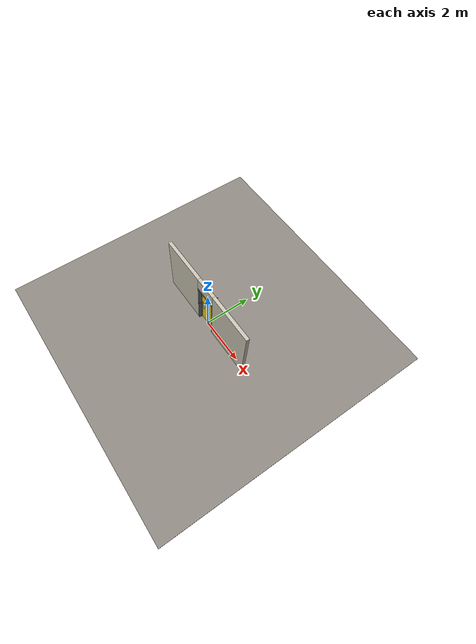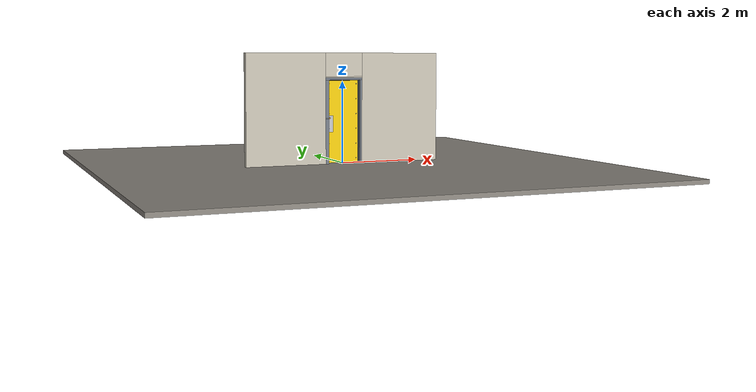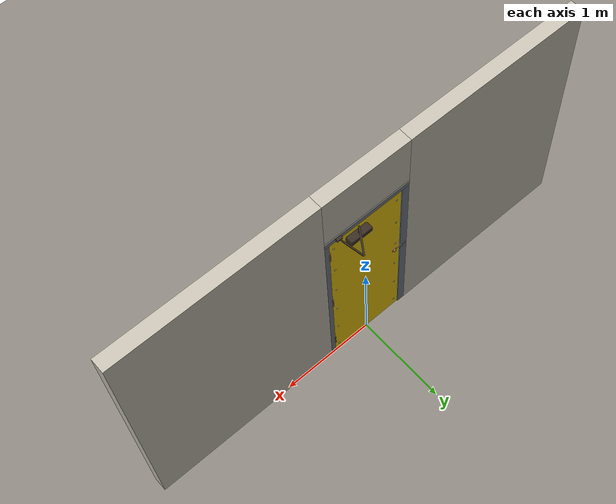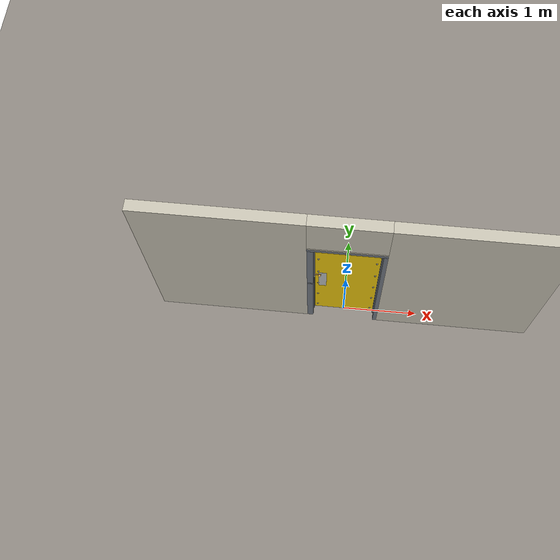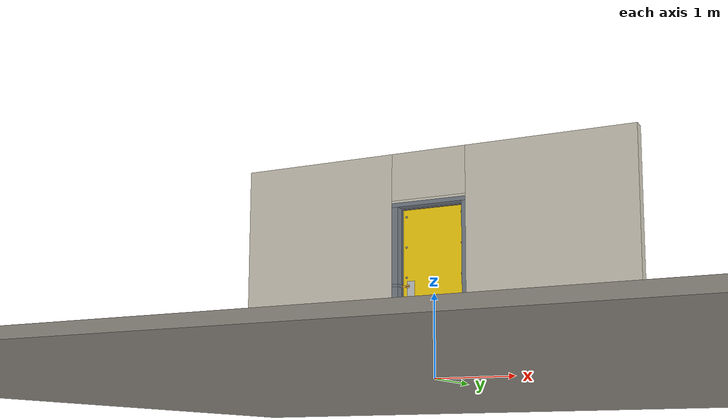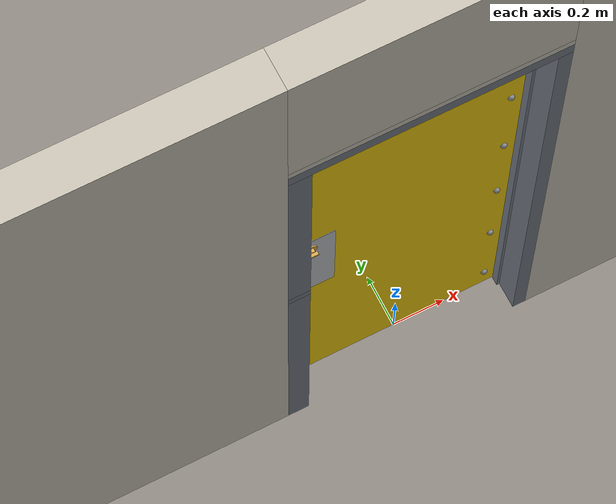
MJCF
<?xml version="1.0" ?>
<mujoco model="db0418_swing_single_full">
  <compiler angle="radian" meshdir="../../hardware" texturedir="../../textures" autolimits="true" inertiafromgeom="false"/>
  <option timestep="0.002" integrator="implicitfast" cone="elliptic" impratio="10" noslip_iterations="3">
    <flag multiccd="enable"/>
  </option>
  <size memory="16M"/>
  <default>
    <geom condim="4" solref="0.005 1" solimp="0.95 0.99 0.001"/>
    <joint solreflimit="0.005 1" solimplimit="0.95 0.99 0.001"/>
    <tendon solreflimit="0.005 1"/>
    <equality solref="0.002 1"/>
  </default>
  <visual>
    <headlight ambient="0.4 0.4 0.4" diffuse="0.7 0.7 0.7" specular="0.2 0.2 0.2"/>
    <quality shadowsize="4096"/>
    <map znear="0.01" zfar="60"/>
  </visual>
  <asset>
    <mesh name="closer_body_b226fdb10b" file="closer_body_b226fdb10b.obj"/>
    <mesh name="cyl_face_e9e5036966" file="cyl_face_e9e5036966.obj"/>
    <mesh name="hinge_6a70328eaf" file="hinge_6a70328eaf.obj"/>
    <mesh name="hinge_jamb_2905960ffb" file="hinge_jamb_2905960ffb.obj"/>
    <mesh name="thumbturn_eb5c9899a3" file="thumbturn_eb5c9899a3.obj"/>
    <material name="mat_floor" rgba="0.55 0.53 0.5 1" specular="0.2" shininess="0.15" reflectance="0"/>
    <material name="mat_wall" rgba="0.78 0.76 0.7 1" specular="0.2" shininess="0.1" reflectance="0"/>
    <material name="mat_leaf" rgba="0.95 0.8 0.05 1" specular="0.23" shininess="0.32" reflectance="0.02"/>
    <material name="mat_rivet" rgba="0.55 0.56 0.58 1" specular="0.8" shininess="0.55" reflectance="0.4"/>
    <material name="mat_hinge" rgba="0.45 0.3 0.22 1" specular="0.5" shininess="0.1" reflectance="0.2"/>
    <material name="mat_op_stainless" rgba="0.75 0.76 0.77 1" specular="0.8" shininess="0.65" reflectance="0.4"/>
    <material name="mat_deadbolt" rgba="0.85 0.66 0.3 1" specular="0.8" shininess="0.75" reflectance="0.4"/>
    <material name="mat_frame" rgba="0.45 0.48 0.52 1" specular="0.32" shininess="0.6" reflectance="0.08"/>
    <material name="mat_seal" rgba="0.1 0.1 0.1 1" specular="0.2" shininess="0.1" reflectance="0"/>
    <material name="mat_closer" rgba="0.22 0.17 0.13 1" specular="0.8" shininess="0.6" reflectance="0.4"/>
    <texture name="skybox" type="skybox" builtin="gradient" rgb1="0.6 0.7 0.85" rgb2="0.9 0.92 0.95" width="256" height="256"/>
  </asset>
  <worldbody>
    <light name="sun" pos="1.5 -2.5 4" dir="-0.3 0.5 -0.8" directional="true" diffuse="0.8 0.8 0.8" specular="0.3 0.3 0.3" castshadow="true"/>
    <light name="fill" pos="-1.5 2.5 3" dir="0.3 -0.5 -0.7" directional="true" diffuse="0.35 0.35 0.4" castshadow="false"/>
    <camera name="robot_view" pos="0 -2.604687 1.734312" xyaxes="1 0 0 0 0.26963 0.962964" fovy="52"/>
    <camera name="far_view" pos="0 2.479687 1.734312" xyaxes="-1 0 0 0 -0.26963 0.962964" fovy="52"/>
    <camera name="iso" pos="-1.932062 -2.197938 2.141063" xyaxes="0.741536 -0.670913 0 0.242917 0.268487 0.932151" fovy="46"/>
    <camera name="detail_handle" pos="-0.1235 -0.8625 1.245" xyaxes="0.97561 0.219512 0 -0.070934 0.315262 0.94635" fovy="38"/>
    <geom name="floor" type="box" size="6 6 0.05" pos="0 0 -0.05" material="mat_floor" group="0" contype="1" conaffinity="1" friction="0.8 0.005 0.0001" density="2400"/>
    <geom name="wall_left" type="box" size="1.00525 0.0725 1.35" pos="-1.49475 -0.0625 1.35" material="mat_wall" group="0" contype="1" conaffinity="1" friction="0.6 0.005 0.0001" density="800"/>
    <geom name="wall_right" type="box" size="1.02025 0.0725 1.35" pos="1.47975 -0.0625 1.35" material="mat_wall" group="0" contype="1" conaffinity="1" friction="0.6 0.005 0.0001" density="800"/>
    <geom name="wall_header" type="box" size="0.4745 0.0725 0.2875" pos="-0.015 -0.0625 2.4125" material="mat_wall" group="0" contype="1" conaffinity="1" friction="0.6 0.005 0.0001" density="800"/>
    <geom name="hinge_0_jamb" type="mesh" mesh="hinge_jamb_2905960ffb" pos="0.4065 0.01 0.259" quat="0 0 0 1" material="mat_hinge" group="1" contype="0" conaffinity="0" density="7850"/>
    <geom name="hinge_1_jamb" type="mesh" mesh="hinge_jamb_2905960ffb" pos="0.4065 0.01 1.025" quat="0 0 0 1" material="mat_hinge" group="1" contype="0" conaffinity="0" density="7850"/>
    <geom name="hinge_2_jamb" type="mesh" mesh="hinge_jamb_2905960ffb" pos="0.4065 0.01 1.861" quat="0 0 0 1" material="mat_hinge" group="1" contype="0" conaffinity="0" density="7850"/>
    <geom name="leaf_deadbolt_strike_b" type="box" size="0.0155 0.003 0.0005" pos="-0.409 0 1.0865" quat="0.5 0.5 0.5 0.5" material="mat_deadbolt" group="1" contype="0" conaffinity="0" density="7800"/>
    <geom name="leaf_deadbolt_strike_l" type="box" size="0.003 0.0155 0.0005" pos="-0.409 -0.0125 1.105" quat="0.5 0.5 0.5 0.5" material="mat_deadbolt" group="1" contype="0" conaffinity="0" density="7800"/>
    <geom name="leaf_deadbolt_strike_t" type="box" size="0.0155 0.003 0.0005" pos="-0.409 0 1.1235" quat="0.5 0.5 0.5 0.5" material="mat_deadbolt" group="1" contype="0" conaffinity="0" density="7800"/>
    <geom name="leaf_deadbolt_strike_r" type="box" size="0.003 0.0155 0.0005" pos="-0.409 0.0125 1.105" quat="0.5 0.5 0.5 0.5" material="mat_deadbolt" group="1" contype="0" conaffinity="0" density="7800"/>
    <geom name="jamb_hinge" type="box" size="0.025 0.0725 1.0225" pos="0.4345 -0.0625 1.0225" material="mat_frame" group="0" contype="1" conaffinity="1" friction="0.6 0.005 0.0001" density="300"/>
    <geom name="strike_1105_wall_n" type="box" size="0.04 0.06275 0.0155" pos="-0.4495 -0.07225 1.105" material="mat_frame" group="0" contype="1" conaffinity="1" friction="0.6 0.005 0.0001" density="300"/>
    <geom name="strike_1105_wall_p" type="box" size="0.0157 0.003 0.0155" pos="-0.4252 0.0125 1.105" material="mat_frame" group="0" contype="1" conaffinity="1" friction="0.6 0.005 0.0001" density="300"/>
    <geom name="strike_1105_back" type="box" size="0.0253 0.0095 0.0155" pos="-0.4642 0 1.105" material="mat_frame" group="0" contype="1" conaffinity="1" friction="0.6 0.005 0.0001" density="300"/>
    <geom name="jamb_strike_0" type="box" size="0.04 0.0725 0.54475" pos="-0.4495 -0.0625 0.54475" material="mat_frame" group="0" contype="1" conaffinity="1" friction="0.6 0.005 0.0001" density="300"/>
    <geom name="jamb_strike_1" type="box" size="0.04 0.0725 0.46225" pos="-0.4495 -0.0625 1.58275" material="mat_frame" group="0" contype="1" conaffinity="1" friction="0.6 0.005 0.0001" density="300"/>
    <geom name="jamb_head" type="box" size="0.4745 0.0725 0.025" pos="-0.015 -0.0625 2.07" material="mat_frame" group="0" contype="1" conaffinity="1" friction="0.6 0.005 0.0001" density="300"/>
    <geom name="head_stud" type="box" size="0.4745 0.0725 0.015" pos="-0.015 -0.0625 2.11" material="mat_wall" group="0" contype="1" conaffinity="1" friction="0.6 0.005 0.0001" density="500"/>
    <geom name="stop_hinge" type="box" size="0.0055 0.016 1.0225" pos="0.404 -0.0195 1.0225" material="mat_frame" group="0" contype="1" conaffinity="1" friction="0.6 0.005 0.0001" density="300"/>
    <geom name="stop_strike" type="box" size="0.0055 0.016 0.53875" pos="-0.404 -0.0195 0.53875" material="mat_frame" group="0" contype="1" conaffinity="1" friction="0.6 0.005 0.0001" density="300"/>
    <geom name="stop_strike_1" type="box" size="0.0055 0.016 0.45625" pos="-0.404 -0.0195 1.58875" material="mat_frame" group="0" contype="1" conaffinity="1" friction="0.6 0.005 0.0001" density="300"/>
    <geom name="stop_head" type="box" size="0.4095 0.016 0.0055" pos="0 -0.0195 2.0395" material="mat_frame" group="0" contype="1" conaffinity="1" friction="0.6 0.005 0.0001" density="300"/>
    <geom name="seal_hinge" type="box" size="0.004 0.004 1.0225" pos="0.4065 -0.007 1.0225" material="mat_seal" group="1" contype="0" conaffinity="0" density="1100"/>
    <geom name="seal_strike" type="box" size="0.004 0.004 0.53875" pos="-0.4065 -0.007 0.53875" material="mat_seal" group="1" contype="0" conaffinity="0" density="1100"/>
    <geom name="seal_strike_1" type="box" size="0.004 0.004 0.45625" pos="-0.4065 -0.007 1.58875" material="mat_seal" group="1" contype="0" conaffinity="0" density="1100"/>
    <geom name="seal_head" type="box" size="0.3895 0.004 0.008" pos="0 -0.007 2.033" material="mat_seal" group="1" contype="0" conaffinity="0" density="1100"/>
    <geom name="closer_bracket" type="box" size="0.03 0.012 0.014" pos="0.3095 0.022 2.075" material="mat_closer" group="1" contype="0" conaffinity="0" density="2700"/>
    <site name="approach_point" pos="0 -1.5 0" quat="1 0 0 0" size="0.05" rgba="0.2 0.9 0.2 0.5" group="4"/>
    <site name="goal_point" pos="0 1.5 0" quat="1 0 0 0" size="0.05" rgba="0.2 0.9 0.2 0.5" group="4"/>
    <site name="door_plane_center" pos="0 0 1.0225" quat="1 0 0 0" size="0.02" rgba="0.2 0.9 0.2 0.5" group="4"/>
    <body name="leaf" pos="0.4095 0 0">
      <inertial pos="-0.399524 0.003977 1.110305" mass="81.375156" quat="0.505918 -0.507051 -0.49718 -0.489651" diaginertia="4.297059865 31.192636417 35.461095373"/>
      <joint name="leaf_hinge" type="hinge" axis="0 0 -1" pos="-0.003 0.01 0" limited="true" range="0 1.745329" solreflimit="0.02 1" damping="10.160326" frictionloss="17.356531" stiffness="19.0031" springref="-2.141756" armature="0.02"/>
      <geom name="leaf_slab" type="box" size="0.4065 0.003 1.016" pos="-0.4095 0 1.025" material="mat_leaf" group="0" contype="1" conaffinity="1" friction="0.45 0.005 0.0001" density="1"/>
      <geom name="leaf_rivet_0_0" type="sphere" size="0.012" pos="-0.053 -0.003 0.109" material="mat_rivet" group="2" contype="0" conaffinity="0" density="7850"/>
      <geom name="leaf_rivet_0_1" type="sphere" size="0.012" pos="-0.766 -0.003 0.109" material="mat_rivet" group="2" contype="0" conaffinity="0" density="7850"/>
      <geom name="leaf_rivet_1_0" type="sphere" size="0.012" pos="-0.053 -0.003 0.4754" material="mat_rivet" group="2" contype="0" conaffinity="0" density="7850"/>
      <geom name="leaf_rivet_1_1" type="sphere" size="0.012" pos="-0.766 -0.003 0.4754" material="mat_rivet" group="2" contype="0" conaffinity="0" density="7850"/>
      <geom name="leaf_rivet_2_0" type="sphere" size="0.012" pos="-0.053 -0.003 0.8418" material="mat_rivet" group="2" contype="0" conaffinity="0" density="7850"/>
      <geom name="leaf_rivet_2_1" type="sphere" size="0.012" pos="-0.766 -0.003 0.8418" material="mat_rivet" group="2" contype="0" conaffinity="0" density="7850"/>
      <geom name="leaf_rivet_3_0" type="sphere" size="0.012" pos="-0.053 -0.003 1.2082" material="mat_rivet" group="2" contype="0" conaffinity="0" density="7850"/>
      <geom name="leaf_rivet_3_1" type="sphere" size="0.012" pos="-0.766 -0.003 1.2082" material="mat_rivet" group="2" contype="0" conaffinity="0" density="7850"/>
      <geom name="leaf_rivet_4_0" type="sphere" size="0.012" pos="-0.053 -0.003 1.5746" material="mat_rivet" group="2" contype="0" conaffinity="0" density="7850"/>
      <geom name="leaf_rivet_4_1" type="sphere" size="0.012" pos="-0.766 -0.003 1.5746" material="mat_rivet" group="2" contype="0" conaffinity="0" density="7850"/>
      <geom name="leaf_rivet_5_0" type="sphere" size="0.012" pos="-0.053 -0.003 1.941" material="mat_rivet" group="2" contype="0" conaffinity="0" density="7850"/>
      <geom name="leaf_rivet_5_1" type="sphere" size="0.012" pos="-0.766 -0.003 1.941" material="mat_rivet" group="2" contype="0" conaffinity="0" density="7850"/>
      <geom name="hinge_0" type="mesh" mesh="hinge_6a70328eaf" pos="-0.003 0.01 0.259" quat="0 0 0 1" material="mat_hinge" group="1" contype="0" conaffinity="0" density="7850"/>
      <geom name="hinge_1" type="mesh" mesh="hinge_6a70328eaf" pos="-0.003 0.01 1.025" quat="0 0 0 1" material="mat_hinge" group="1" contype="0" conaffinity="0" density="7850"/>
      <geom name="hinge_2" type="mesh" mesh="hinge_6a70328eaf" pos="-0.003 0.01 1.861" quat="0 0 0 1" material="mat_hinge" group="1" contype="0" conaffinity="0" density="7850"/>
      <geom name="leaf_push_plate_n" type="box" size="0.05 0.0008 0.2" pos="-0.711 -0.0038 0.965" material="mat_op_stainless" group="1" contype="0" conaffinity="0" density="7900"/>
      <geom name="leaf_deadbolt_faceplate" type="box" size="0.0006 0.001 0.0245" pos="-0.8154 0 1.105" material="mat_deadbolt" group="1" contype="0" conaffinity="0" density="8500"/>
      <geom name="leaf_deadbolt_cylinder_face" type="mesh" mesh="cyl_face_e9e5036966" pos="-0.751 0.003 1.105" quat="0 0 0.707107 0.707107" material="mat_deadbolt" group="1" contype="0" conaffinity="0" density="7100"/>
      <geom name="closer_body" type="mesh" mesh="closer_body_b226fdb10b" pos="-0.3 0.003 1.952" quat="0 0 0.707107 0.707107" material="mat_closer" group="1" contype="0" conaffinity="0" density="2000"/>
      <geom name="closer_body_col" type="box" size="0.12 0.04 0.03" pos="-0.3 0.043 1.952" material="mat_closer" group="3" contype="1" conaffinity="1" rgba="0.8 0.3 0.3 0.25" friction="0.6 0.005 0.0001" density="2000"/>
      <geom name="closer_pinion_shaft" type="cylinder" size="0.008 0.0615" pos="-0.3 0.045 2.0135" material="mat_closer" group="1" contype="0" conaffinity="0" density="2700"/>
      <site name="leaf_push_plate_push_n" pos="-0.711 -0.003 0.965" quat="1 0 0 0" size="0.012" rgba="0.2 0.9 0.2 0.5" group="4"/>
      <site name="leaf_edge_mid" pos="-0.816 0 1.016" quat="1 0 0 0" size="0.02" rgba="0.2 0.9 0.2 0.5" group="4"/>
      <body name="leaf_deadbolt" pos="-0.816 0 1.105">
        <inertial pos="0.0277 0 0" mass="0.18836" quat="0 0 0.707107 0.707107" diaginertia="0.000013829 0.000052194 0.000057986"/>
        <joint name="leaf_deadbolt_slide" type="slide" axis="1 0 0" limited="true" range="0 0.0254" damping="5" frictionloss="1.5" armature="0.1" ref="0.0254"/>
        <geom name="leaf_deadbolt_box" type="box" size="0.0277 0.008 0.0125" pos="0.0277 0 0" material="mat_deadbolt" group="0" contype="1" conaffinity="1" friction="0.3 0.005 0.0001" density="8500"/>
      </body>
      <body name="leaf_deadbolt_thumbturn" pos="-0.751 -0.003 1.105">
        <inertial pos="0 -0.012928 0" mass="0.178946" quat="0.707107 0.000001 0.000001 0.707107" diaginertia="0.000026045 0.000026215 0.000032438"/>
        <joint name="leaf_deadbolt_thumbturn_hinge" type="hinge" axis="0 1 0" limited="true" range="0 1.5708" damping="0.05" frictionloss="0.35" armature="0.005" ref="1.5708"/>
        <geom name="leaf_deadbolt_thumbturn_mesh" type="mesh" mesh="thumbturn_eb5c9899a3" pos="0 0 0" quat="0.500001 0.500001 -0.499999 0.499999" material="mat_deadbolt" group="0" contype="1" conaffinity="1" friction="0.6 0.005 0.0001" density="7100"/>
        <geom name="leaf_deadbolt_thumbturn_col" type="box" size="0.006 0.012 0.016" pos="0 -0.02 0" quat="0.707105 0 0.707108 0" material="mat_deadbolt" group="3" contype="1" conaffinity="1" rgba="0.8 0.3 0.3 0.25" friction="0.6 0.005 0.0001" density="7100"/>
      </body>
      <body name="closer_arm_main" pos="-0.3 0.045 2.075" quat="0.881485 0 0 0.472212">
        <inertial pos="0.14 0 0" mass="0.12096" quat="1 0 0 0" diaginertia="0.000003588 0.00079128 0.000792852"/>
        <joint name="closer_pinion" type="hinge" axis="0 0 1" limited="false" damping="0.01" armature="0.002"/>
        <geom name="closer_arm_main_geom" type="box" size="0.14 0.008 0.005" pos="0.14 0 0" material="mat_closer" group="1" contype="0" conaffinity="0" density="2700"/>
        <body name="closer_arm_fore" pos="0.28 0 0" quat="0.371222 0 0 -0.928544">
          <inertial pos="0.128088 0 0" mass="0.076531" quat="1 0 0 0" diaginertia="0.000001771 0.000437665 0.000438201"/>
          <joint name="closer_elbow" type="hinge" axis="0 0 1" limited="false" damping="0.01" armature="0.002"/>
          <geom name="closer_arm_fore_geom" type="box" size="0.1125 0.007 0.004" pos="0.1125 0 0" material="mat_closer" group="1" contype="0" conaffinity="0" density="2700"/>
          <geom name="closer_fore_neck" type="box" size="0.0175 0.003 0.003" pos="0.2425 0 0" material="mat_closer" group="1" contype="0" conaffinity="0" density="2700"/>
          <geom name="closer_fore_pivot" type="cylinder" size="0.005 0.012" pos="0.26 0 0" material="mat_closer" group="1" contype="0" conaffinity="0" density="2700"/>
        </body>
      </body>
    </body>
  </worldbody>
  <equality>
    <joint name="leaf_deadbolt_couple" joint1="leaf_deadbolt_slide" joint2="leaf_deadbolt_thumbturn_hinge" polycoef="0 0.01617 0 0 0" active="true"/>
    <connect name="closer_arm_connect" body1="closer_arm_fore" body2="world" anchor="0.26 0 0" active="true"/>
  </equality>
  <contact>
    <exclude body1="leaf_deadbolt" body2="leaf_deadbolt_thumbturn"/>
    <exclude body1="closer_arm_main" body2="leaf"/>
    <exclude body1="closer_arm_fore" body2="leaf"/>
    <exclude body1="closer_arm_main" body2="closer_arm_fore"/>
  </contact>
  <sensor>
    <jointpos name="leaf_hinge_pos" joint="leaf_hinge"/>
    <jointvel name="leaf_hinge_vel" joint="leaf_hinge"/>
    <jointpos name="leaf_deadbolt_slide_pos" joint="leaf_deadbolt_slide"/>
    <jointvel name="leaf_deadbolt_slide_vel" joint="leaf_deadbolt_slide"/>
    <jointpos name="leaf_deadbolt_thumbturn_hinge_pos" joint="leaf_deadbolt_thumbturn_hinge"/>
    <jointvel name="leaf_deadbolt_thumbturn_hinge_vel" joint="leaf_deadbolt_thumbturn_hinge"/>
  </sensor>
</mujoco>
